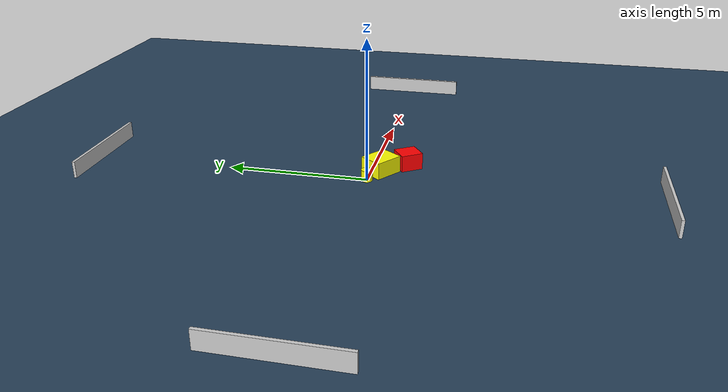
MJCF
<?xml version="1.0" ?>
<mujoco model="generated_environment">
  <option timestep="0.01" integrator="RK4" cone="elliptic"/>
  <default>
    <geom density="1"/>
  </default>
  <asset>
    <texture builtin="gradient" height="3072" name="skybox" rgb1="0.3 0.5 0.7" rgb2="0 0 0" type="skybox" width="512"/>
    <texture builtin="checker" height="300" name="groundplane" rgb1="0.2 0.3 0.4" rgb2="0.1 0.2 0.3" type="2d" width="300"/>
    <material name="groundplane" reflectance="0.2" texrepeat="5 5" texture="groundplane"/>
  </asset>
  <worldbody>
    <light dir="0 0 -1" directional="true" pos="0 0 1.5"/>
    <geom condim="3" friction="0.5 0.005 0.001" material="groundplane" name="floor" pos="0 0 0" size="0 0 0.05" type="plane"/>
    <body name="walls">
      <geom name="wall_1" condim="4" pos="-10.0 0.0 0.3" rgba="0.800000011920929 0.800000011920929 0.800000011920929 1.0" size="0.05 2.0 0.3" type="box"/>
      <geom name="wall_2" condim="4" pos="10.0 0.0 0.3" rgba="0.800000011920929 0.800000011920929 0.800000011920929 1.0" size="0.05 2.0 0.3" type="box"/>
      <geom name="wall_3" condim="4" pos="0.0 -10.0 0.3" rgba="0.800000011920929 0.800000011920929 0.800000011920929 1.0" size="2.0 0.05 0.3" type="box"/>
      <geom name="wall_4" condim="4" pos="0.0 10.0 0.3" rgba="0.800000011920929 0.800000011920929 0.800000011920929 1.0" size="2.0 0.05 0.3" type="box"/>
    </body>
    <body name="robot">
      <joint name="joint_x" type="slide" pos="0 0 0" axis="1 0 0"/>
      <joint name="joint_y" type="slide" pos="0 0 0" axis="0 1 0"/>
      <geom name="robot" type="cylinder" pos="0.0 0.0 0.2" size="0.2 0.2 0.0" mass="5.0" friction="1.0 0.005 0.0001" condim="4" rgba="1.0 1.0 0.0 1.0"/>
    </body>
    <body name="obstacle_1_movable">
      <geom name="obstacle_1_movable" condim="4" pos="0.7793153292555159 -0.34264060138868646 0.3" euler="0 0 144.4187404138216" friction="0.0 0.005 0.001" rgba="1.0 1.0 0.0 1.0" size="0.5268834542204557 0.4336429797672333 0.3" type="box" mass="0.1"/>
      <joint type="free"/>
    </body>
    <body name="obstacle_2_static">
      <geom name="obstacle_2_static" condim="4" pos="1.4329725951823804 -1.2020511832032614 0.3" euler="0 0 124.05380895981776" friction="0.0 0.005 0.001" rgba="1.0 0.0 0.0 1.0" size="0.3993566501314225 0.36253169969420884 0.3" type="box"/>
    </body>
  </worldbody>
  <actuator>
    <motor name="actuator_x" joint="joint_x" gear="1" ctrlrange="-1 1"/>
    <motor name="actuator_y" joint="joint_y" gear="1" ctrlrange="-1 1"/>
  </actuator>
</mujoco>
